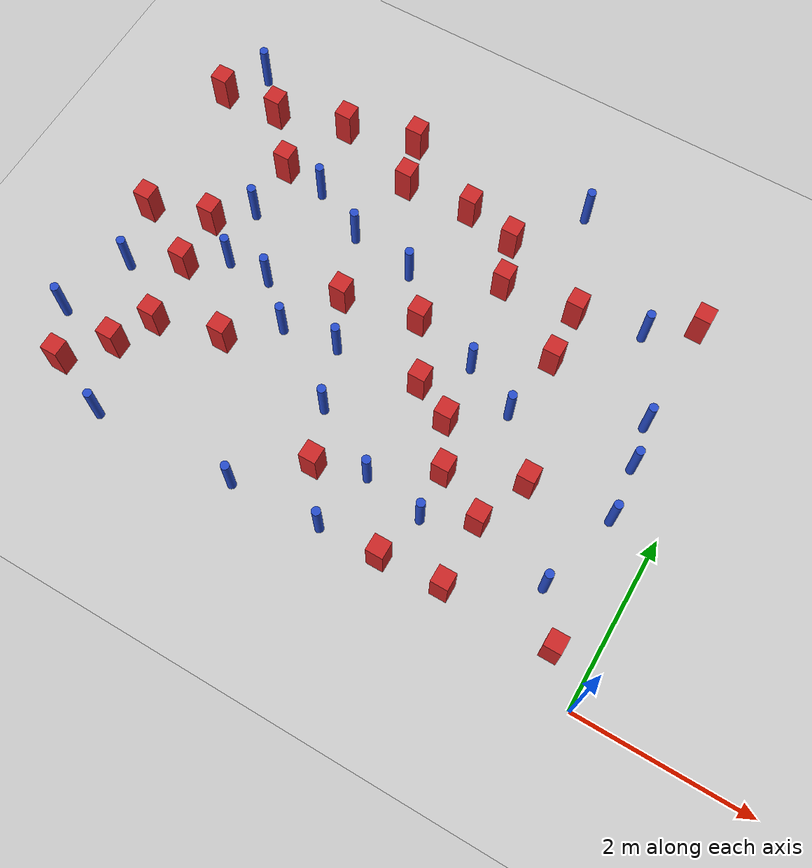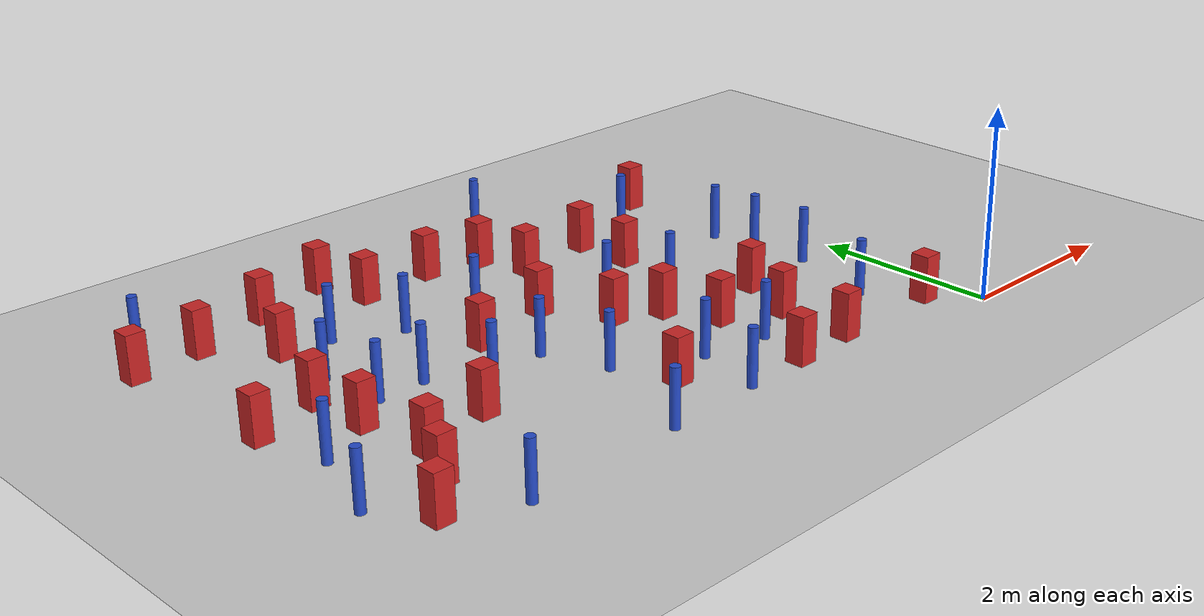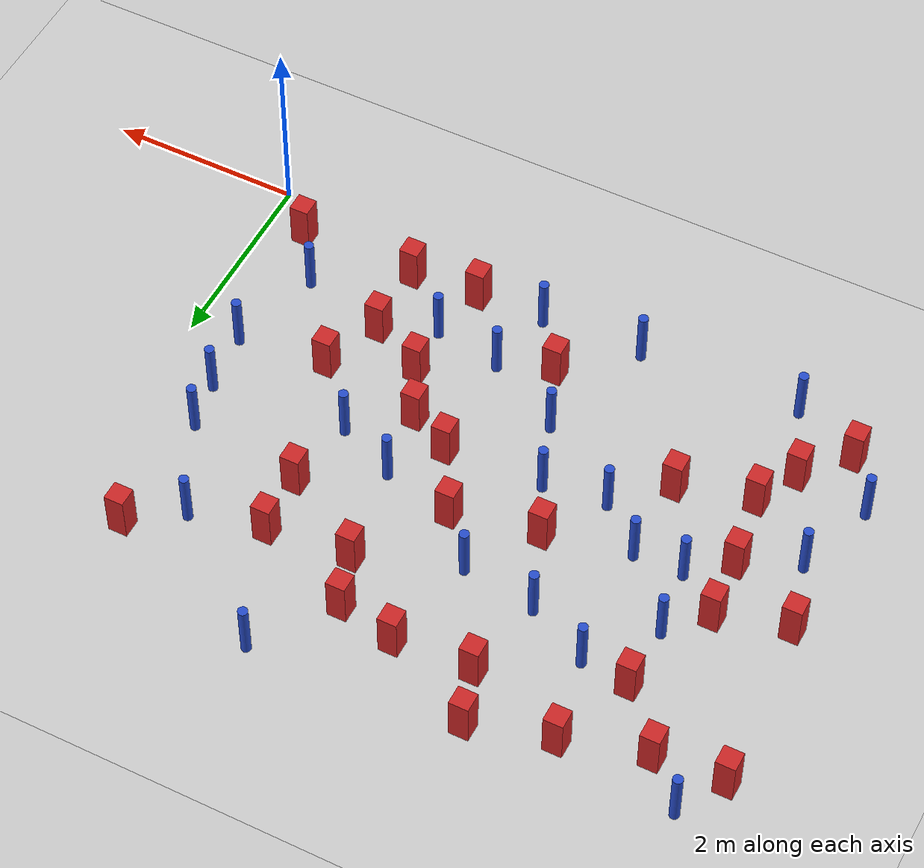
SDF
<sdf version="1.6">
 <world name="default">
  <model name="ground_plane">
   <static>1</static>
   <link name="link">
    <collision name="collision">
     <geometry><plane><normal>0 0 1</normal><size>100 100</size></plane></geometry>
     <surface><friction><ode><mu>100</mu><mu2>50</mu2></ode></friction></surface>
    </collision>
    <visual name="visual">
     <cast_shadows>0</cast_shadows>
     <geometry><plane><normal>0 0 1</normal><size>100 100</size></plane></geometry>
     <material>
      <ambient>1.0 1.0 1.0 1.0</ambient>
      <diffuse>0.8 0.8 0.8 1.0</diffuse>
      <specular>0.01 0.01 0.01 1.000000</specular>
     </material>
    </visual>
   </link>
  </model>
  <model name="square_post_obstacle1">
   <static>true</static>
   <pose>-6.06593483988 2.84606556767 -7.80171244635e-07 7.17449752808e-06 -5.6639232126e-07 2.2715510512e-05</pose>
   <link name="link">
    <pose>0 0 0.25 0 -0 0</pose>
    <inertial>
     <mass>100</mass>
     <inertia>
      <ixx>0.166667</ixx>
      <ixy>0</ixy>
      <ixz>0</ixz>
      <iyy>0.166667</iyy>
      <iyz>0</iyz>
      <izz>0.166667</izz>
     </inertia>
    </inertial>
    <collision name="collision"><geometry><box><size>.2 .2 .5</size></box></geometry></collision>
    <visual name="visual">
     <geometry><box><size>.2 .2 .5</size></box></geometry>
     <material>
      <script><name>Gazebo/Red</name><uri>file://media/materials/scripts/gazebo.material</uri></script>
     </material>
    </visual>
   </link>
  </model>
  <model name="pole_obstacle4">
   <static>true</static>
   <pose>-6.62271847149 4.88114165928 -2.66029137441e-07 -5.69430205655e-07 6.84129966534e-07 -8.68349370984e-08</pose>
   <link name="link">
    <pose>0 0 0.3 0 -0 0</pose>
    <inertial>
     <mass>1</mass>
     <inertia><ixx>0.145833</ixx><ixy>0</ixy><ixz>0</ixz><iyy>0.145833</iyy><iyz>0</iyz><izz>0.125</izz></inertia>
    </inertial>
    <collision name="collision">
     <geometry><cylinder><radius>0.05</radius><length>.6</length></cylinder></geometry>
    </collision>
    <visual name="visual">
     <geometry><cylinder><radius>0.05</radius><length>.6</length></cylinder></geometry>
     <material>
      <script><name>Gazebo/Blue</name><uri>file://media/materials/scripts/gazebo.material</uri></script>
     </material>
    </visual>
   </link>
  </model>
  <model name="pole_obstacle11">
   <static>true</static>
   <pose>-3.99268747711 2.19236313208 -2.66029137441e-07 -5.69430205653e-07 6.84129966536e-07 -8.68349370973e-08</pose>
   <link name="link">
    <pose>0 0 0.3 0 -0 0</pose>
    <inertial>
     <mass>1</mass>
     <inertia><ixx>0.145833</ixx><ixy>0</ixy><ixz>0</ixz><iyy>0.145833</iyy><iyz>0</iyz><izz>0.125</izz></inertia>
    </inertial>
    <collision name="collision">
     <geometry><cylinder><radius>0.05</radius><length>.6</length></cylinder></geometry>
    </collision>
    <visual name="visual">
     <geometry><cylinder><radius>0.05</radius><length>.6</length></cylinder></geometry>
     <material>
      <script><name>Gazebo/Blue</name><uri>file://media/materials/scripts/gazebo.material</uri></script>
     </material>
    </visual>
   </link>
  </model>
  <model name="square_post_obstacle8">
   <static>true</static>
   <pose>-1.87889073351 3.23329521501 -7.80171244635e-07 7.17449752808e-06 -5.6639232126e-07 2.2715510512e-05</pose>
   <link name="link">
    <pose>0 0 0.25 0 -0 0</pose>
    <inertial>
     <mass>100</mass>
     <inertia>
      <ixx>0.166667</ixx>
      <ixy>0</ixy>
      <ixz>0</ixz>
      <iyy>0.166667</iyy>
      <iyz>0</iyz>
      <izz>0.166667</izz>
     </inertia>
    </inertial>
    <collision name="collision"><geometry><box><size>.2 .2 .5</size></box></geometry></collision>
    <visual name="visual">
     <geometry><box><size>.2 .2 .5</size></box></geometry>
     <material>
      <script><name>Gazebo/Red</name><uri>file://media/materials/scripts/gazebo.material</uri></script>
     </material>
    </visual>
   </link>
  </model>
  <model name="square_post_obstacle9">
   <static>true</static>
   <pose>-2.26860949439 1.50420634749 -7.80171244635e-07 7.17449752808e-06 -5.6639232126e-07 2.2715510512e-05</pose>
   <link name="link">
    <pose>0 0 0.25 0 -0 0</pose>
    <inertial>
     <mass>100</mass>
     <inertia>
      <ixx>0.166667</ixx>
      <ixy>0</ixy>
      <ixz>0</ixz>
      <iyy>0.166667</iyy>
      <iyz>0</iyz>
      <izz>0.166667</izz>
     </inertia>
    </inertial>
    <collision name="collision"><geometry><box><size>.2 .2 .5</size></box></geometry></collision>
    <visual name="visual">
     <geometry><box><size>.2 .2 .5</size></box></geometry>
     <material>
      <script><name>Gazebo/Red</name><uri>file://media/materials/scripts/gazebo.material</uri></script>
     </material>
    </visual>
   </link>
  </model>
  <model name="square_post_obstacle15">
   <static>true</static>
   <pose>-1.92103498765 3.86688536144 -7.80171244635e-07 7.17449752808e-06 -5.6639232126e-07 2.2715510512e-05</pose>
   <link name="link">
    <pose>0 0 0.25 0 -0 0</pose>
    <inertial>
     <mass>100</mass>
     <inertia>
      <ixx>0.166667</ixx>
      <ixy>0</ixy>
      <ixz>0</ixz>
      <iyy>0.166667</iyy>
      <iyz>0</iyz>
      <izz>0.166667</izz>
     </inertia>
    </inertial>
    <collision name="collision"><geometry><box><size>.2 .2 .5</size></box></geometry></collision>
    <visual name="visual">
     <geometry><box><size>.2 .2 .5</size></box></geometry>
     <material>
      <script><name>Gazebo/Red</name><uri>file://media/materials/scripts/gazebo.material</uri></script>
     </material>
    </visual>
   </link>
  </model>
  <model name="square_post_obstacle16">
   <static>true</static>
   <pose>-6.01761942537 2.20735195207 -7.80171244635e-07 7.17449752808e-06 -5.6639232126e-07 2.2715510512e-05</pose>
   <link name="link">
    <pose>0 0 0.25 0 -0 0</pose>
    <inertial>
     <mass>100</mass>
     <inertia>
      <ixx>0.166667</ixx>
      <ixy>0</ixy>
      <ixz>0</ixz>
      <iyy>0.166667</iyy>
      <iyz>0</iyz>
      <izz>0.166667</izz>
     </inertia>
    </inertial>
    <collision name="collision"><geometry><box><size>.2 .2 .5</size></box></geometry></collision>
    <visual name="visual">
     <geometry><box><size>.2 .2 .5</size></box></geometry>
     <material>
      <script><name>Gazebo/Red</name><uri>file://media/materials/scripts/gazebo.material</uri></script>
     </material>
    </visual>
   </link>
  </model>
  <model name="square_post_obstacle21">
   <static>true</static>
   <pose>-2.53292568742 2.02529417124 -7.80171244635e-07 7.17449752808e-06 -5.6639232126e-07 2.2715510512e-05</pose>
   <link name="link">
    <pose>0 0 0.25 0 -0 0</pose>
    <inertial>
     <mass>100</mass>
     <inertia>
      <ixx>0.166667</ixx>
      <ixy>0</ixy>
      <ixz>0</ixz>
      <iyy>0.166667</iyy>
      <iyz>0</iyz>
      <izz>0.166667</izz>
     </inertia>
    </inertial>
    <collision name="collision"><geometry><box><size>.2 .2 .5</size></box></geometry></collision>
    <visual name="visual">
     <geometry><box><size>.2 .2 .5</size></box></geometry>
     <material>
      <script><name>Gazebo/Red</name><uri>file://media/materials/scripts/gazebo.material</uri></script>
     </material>
    </visual>
   </link>
  </model>
  <model name="pole_obstacle38">
   <static>true</static>
   <pose>-6.58672201873 1.91724689075 -2.66029137441e-07 -5.69430205627e-07 6.84129966567e-07 -8.68349370776e-08</pose>
   <link name="link">
    <pose>0 0 0.3 0 -0 0</pose>
    <inertial>
     <mass>1</mass>
     <inertia><ixx>0.145833</ixx><ixy>0</ixy><ixz>0</ixz><iyy>0.145833</iyy><iyz>0</iyz><izz>0.125</izz></inertia>
    </inertial>
    <collision name="collision">
     <geometry><cylinder><radius>0.05</radius><length>.6</length></cylinder></geometry>
    </collision>
    <visual name="visual">
     <geometry><cylinder><radius>0.05</radius><length>.6</length></cylinder></geometry>
     <material>
      <script><name>Gazebo/Blue</name><uri>file://media/materials/scripts/gazebo.material</uri></script>
     </material>
    </visual>
   </link>
  </model>
  <model name="pole_obstacle39">
   <static>true</static>
   <pose>-3.77330424287 3.39576795061 -2.66029137441e-07 -5.6943020563e-07 6.84129966563e-07 -8.68349370788e-08</pose>
   <link name="link">
    <pose>0 0 0.3 0 -0 0</pose>
    <inertial>
     <mass>1</mass>
     <inertia><ixx>0.145833</ixx><ixy>0</ixy><ixz>0</ixz><iyy>0.145833</iyy><iyz>0</iyz><izz>0.125</izz></inertia>
    </inertial>
    <collision name="collision">
     <geometry><cylinder><radius>0.05</radius><length>.6</length></cylinder></geometry>
    </collision>
    <visual name="visual">
     <geometry><cylinder><radius>0.05</radius><length>.6</length></cylinder></geometry>
     <material>
      <script><name>Gazebo/Blue</name><uri>file://media/materials/scripts/gazebo.material</uri></script>
     </material>
    </visual>
   </link>
  </model>
  <model name="pole_obstacle41">
   <static>true</static>
   <pose>-4.1441873771 0.296855048618 -2.66029137441e-07 -5.69430205636e-07 6.84129966556e-07 -8.68349370825e-08</pose>
   <link name="link">
    <pose>0 0 0.3 0 -0 0</pose>
    <inertial>
     <mass>1</mass>
     <inertia><ixx>0.145833</ixx><ixy>0</ixy><ixz>0</ixz><iyy>0.145833</iyy><iyz>0</iyz><izz>0.125</izz></inertia>
    </inertial>
    <collision name="collision">
     <geometry><cylinder><radius>0.05</radius><length>.6</length></cylinder></geometry>
    </collision>
    <visual name="visual">
     <geometry><cylinder><radius>0.05</radius><length>.6</length></cylinder></geometry>
     <material>
      <script><name>Gazebo/Blue</name><uri>file://media/materials/scripts/gazebo.material</uri></script>
     </material>
    </visual>
   </link>
  </model>
  <model name="square_post_obstacle31">
   <static>true</static>
   <pose>-1.45240076418 1.83651459743 -7.80171244635e-07 7.17449752808e-06 -5.6639232126e-07 2.2715510512e-05</pose>
   <link name="link">
    <pose>0 0 0.25 0 -0 0</pose>
    <inertial>
     <mass>100</mass>
     <inertia>
      <ixx>0.166667</ixx>
      <ixy>0</ixy>
      <ixz>0</ixz>
      <iyy>0.166667</iyy>
      <iyz>0</iyz>
      <izz>0.166667</izz>
     </inertia>
    </inertial>
    <collision name="collision"><geometry><box><size>.2 .2 .5</size></box></geometry></collision>
    <visual name="visual">
     <geometry><box><size>.2 .2 .5</size></box></geometry>
     <material>
      <script><name>Gazebo/Red</name><uri>file://media/materials/scripts/gazebo.material</uri></script>
     </material>
    </visual>
   </link>
  </model>
  <model name="square_post_obstacle34">
   <static>true</static>
   <pose>-5.12963393485 1.65253416771 -7.80171244635e-07 7.17449752808e-06 -5.6639232126e-07 2.2715510512e-05</pose>
   <link name="link">
    <pose>0 0 0.25 0 -0 0</pose>
    <inertial>
     <mass>100</mass>
     <inertia>
      <ixx>0.166667</ixx>
      <ixy>0</ixy>
      <ixz>0</ixz>
      <iyy>0.166667</iyy>
      <iyz>0</iyz>
      <izz>0.166667</izz>
     </inertia>
    </inertial>
    <collision name="collision"><geometry><box><size>.2 .2 .5</size></box></geometry></collision>
    <visual name="visual">
     <geometry><box><size>.2 .2 .5</size></box></geometry>
     <material>
      <script><name>Gazebo/Red</name><uri>file://media/materials/scripts/gazebo.material</uri></script>
     </material>
    </visual>
   </link>
  </model>
  <model name="square_post_obstacle44">
   <static>true</static>
   <pose>-0.654440893285 4.39791983803 -7.80171244635e-07 7.17449752808e-06 -5.6639232126e-07 2.2715510512e-05</pose>
   <link name="link">
    <pose>0 0 0.25 0 -0 0</pose>
    <inertial>
     <mass>100</mass>
     <inertia>
      <ixx>0.166667</ixx>
      <ixy>0</ixy>
      <ixz>0</ixz>
      <iyy>0.166667</iyy>
      <iyz>0</iyz>
      <izz>0.166667</izz>
     </inertia>
    </inertial>
    <collision name="collision"><geometry><box><size>.2 .2 .5</size></box></geometry></collision>
    <visual name="visual">
     <geometry><box><size>.2 .2 .5</size></box></geometry>
     <material>
      <script><name>Gazebo/Red</name><uri>file://media/materials/scripts/gazebo.material</uri></script>
     </material>
    </visual>
   </link>
  </model>
  <model name="square_post_obstacle46">
   <static>true</static>
   <pose>-5.70289400672 3.88062406893 -7.80171244635e-07 7.17449752808e-06 -5.6639232126e-07 2.2715510512e-05</pose>
   <link name="link">
    <pose>0 0 0.25 0 -0 0</pose>
    <inertial>
     <mass>100</mass>
     <inertia>
      <ixx>0.166667</ixx>
      <ixy>0</ixy>
      <ixz>0</ixz>
      <iyy>0.166667</iyy>
      <iyz>0</iyz>
      <izz>0.166667</izz>
     </inertia>
    </inertial>
    <collision name="collision"><geometry><box><size>.2 .2 .5</size></box></geometry></collision>
    <visual name="visual">
     <geometry><box><size>.2 .2 .5</size></box></geometry>
     <material>
      <script><name>Gazebo/Red</name><uri>file://media/materials/scripts/gazebo.material</uri></script>
     </material>
    </visual>
   </link>
  </model>
  <model name="pole_obstacle65">
   <static>true</static>
   <pose>-2.38574666746 5.07814431807 -2.66029137441e-07 -5.69430205635e-07 6.84129966557e-07 -8.68349370832e-08</pose>
   <link name="link">
    <pose>0 0 0.3 0 -0 0</pose>
    <inertial>
     <mass>1</mass>
     <inertia><ixx>0.145833</ixx><ixy>0</ixy><ixz>0</ixz><iyy>0.145833</iyy><iyz>0</iyz><izz>0.125</izz></inertia>
    </inertial>
    <collision name="collision">
     <geometry><cylinder><radius>0.05</radius><length>.6</length></cylinder></geometry>
    </collision>
    <visual name="visual">
     <geometry><cylinder><radius>0.05</radius><length>.6</length></cylinder></geometry>
     <material>
      <script><name>Gazebo/Blue</name><uri>file://media/materials/scripts/gazebo.material</uri></script>
     </material>
    </visual>
   </link>
  </model>
  <model name="pole_obstacle71">
   <static>true</static>
   <pose>-3.09207731526 0.352494883554 -2.66029137441e-07 -5.69430205624e-07 6.8412996657e-07 -8.6834937075e-08</pose>
   <link name="link">
    <pose>0 0 0.3 0 -0 0</pose>
    <inertial>
     <mass>1</mass>
     <inertia><ixx>0.145833</ixx><ixy>0</ixy><ixz>0</ixz><iyy>0.145833</iyy><iyz>0</iyz><izz>0.125</izz></inertia>
    </inertial>
    <collision name="collision">
     <geometry><cylinder><radius>0.05</radius><length>.6</length></cylinder></geometry>
    </collision>
    <visual name="visual">
     <geometry><cylinder><radius>0.05</radius><length>.6</length></cylinder></geometry>
     <material>
      <script><name>Gazebo/Blue</name><uri>file://media/materials/scripts/gazebo.material</uri></script>
     </material>
    </visual>
   </link>
  </model>
  <model name="pole_obstacle80">
   <static>true</static>
   <pose>-0.578013936541 2.56626513027 -2.66029137441e-07 -5.69430205631e-07 6.84129966562e-07 -8.68349370796e-08</pose>
   <link name="link">
    <pose>0 0 0.3 0 -0 0</pose>
    <inertial>
     <mass>1</mass>
     <inertia><ixx>0.145833</ixx><ixy>0</ixy><ixz>0</ixz><iyy>0.145833</iyy><iyz>0</iyz><izz>0.125</izz></inertia>
    </inertial>
    <collision name="collision">
     <geometry><cylinder><radius>0.05</radius><length>.6</length></cylinder></geometry>
    </collision>
    <visual name="visual">
     <geometry><cylinder><radius>0.05</radius><length>.6</length></cylinder></geometry>
     <material>
      <script><name>Gazebo/Blue</name><uri>file://media/materials/scripts/gazebo.material</uri></script>
     </material>
    </visual>
   </link>
  </model>
  <model name="pole_obstacle82">
   <static>true</static>
   <pose>-5.19753260124 3.82438765415 -2.66029137441e-07 -5.69430205643e-07 6.84129966548e-07 -8.68349370881e-08</pose>
   <link name="link">
    <pose>0 0 0.3 0 -0 0</pose>
    <inertial>
     <mass>1</mass>
     <inertia><ixx>0.145833</ixx><ixy>0</ixy><ixz>0</ixz><iyy>0.145833</iyy><iyz>0</iyz><izz>0.125</izz></inertia>
    </inertial>
    <collision name="collision">
     <geometry><cylinder><radius>0.05</radius><length>.6</length></cylinder></geometry>
    </collision>
    <visual name="visual">
     <geometry><cylinder><radius>0.05</radius><length>.6</length></cylinder></geometry>
     <material>
      <script><name>Gazebo/Blue</name><uri>file://media/materials/scripts/gazebo.material</uri></script>
     </material>
    </visual>
   </link>
  </model>
  <model name="square_post_obstacle72">
   <static>true</static>
   <pose>-3.49173247439 0.896241034373 -7.80171244635e-07 7.17449752808e-06 -5.6639232126e-07 2.2715510512e-05</pose>
   <link name="link">
    <pose>0 0 0.25 0 -0 0</pose>
    <inertial>
     <mass>100</mass>
     <inertia>
      <ixx>0.166667</ixx>
      <ixy>0</ixy>
      <ixz>0</ixz>
      <iyy>0.166667</iyy>
      <iyz>0</iyz>
      <izz>0.166667</izz>
     </inertia>
    </inertial>
    <collision name="collision"><geometry><box><size>.2 .2 .5</size></box></geometry></collision>
    <visual name="visual">
     <geometry><box><size>.2 .2 .5</size></box></geometry>
     <material>
      <script><name>Gazebo/Red</name><uri>file://media/materials/scripts/gazebo.material</uri></script>
     </material>
    </visual>
   </link>
  </model>
  <model name="pole_obstacle83">
   <static>true</static>
   <pose>-0.786725092776 0.959872520723 -2.66029137441e-07 -5.69430205642e-07 6.84129966549e-07 -8.68349370893e-08</pose>
   <link name="link">
    <pose>0 0 0.3 0 -0 0</pose>
    <inertial>
     <mass>1</mass>
     <inertia><ixx>0.145833</ixx><ixy>0</ixy><ixz>0</ixz><iyy>0.145833</iyy><iyz>0</iyz><izz>0.125</izz></inertia>
    </inertial>
    <collision name="collision">
     <geometry><cylinder><radius>0.05</radius><length>.6</length></cylinder></geometry>
    </collision>
    <visual name="visual">
     <geometry><cylinder><radius>0.05</radius><length>.6</length></cylinder></geometry>
     <material>
      <script><name>Gazebo/Blue</name><uri>file://media/materials/scripts/gazebo.material</uri></script>
     </material>
    </visual>
   </link>
  </model>
  <model name="square_post_obstacle79">
   <static>true</static>
   <pose>-4.3748003786 4.38505757336 -7.80171244635e-07 7.17449752808e-06 -5.6639232126e-07 2.2715510512e-05</pose>
   <link name="link">
    <pose>0 0 0.25 0 -0 0</pose>
    <inertial>
     <mass>100</mass>
     <inertia>
      <ixx>0.166667</ixx>
      <ixy>0</ixy>
      <ixz>0</ixz>
      <iyy>0.166667</iyy>
      <iyz>0</iyz>
      <izz>0.166667</izz>
     </inertia>
    </inertial>
    <collision name="collision"><geometry><box><size>.2 .2 .5</size></box></geometry></collision>
    <visual name="visual">
     <geometry><box><size>.2 .2 .5</size></box></geometry>
     <material>
      <script><name>Gazebo/Red</name><uri>file://media/materials/scripts/gazebo.material</uri></script>
     </material>
    </visual>
   </link>
  </model>
  <model name="pole_obstacle93">
   <static>true</static>
   <pose>-5.61876787686 2.51191317717 -2.66029137441e-07 -5.69430205643e-07 6.84129966548e-07 -8.68349370881e-08</pose>
   <link name="link">
    <pose>0 0 0.3 0 -0 0</pose>
    <inertial>
     <mass>1</mass>
     <inertia><ixx>0.145833</ixx><ixy>0</ixy><ixz>0</ixz><iyy>0.145833</iyy><iyz>0</iyz><izz>0.125</izz></inertia>
    </inertial>
    <collision name="collision">
     <geometry><cylinder><radius>0.05</radius><length>.6</length></cylinder></geometry>
    </collision>
    <visual name="visual">
     <geometry><cylinder><radius>0.05</radius><length>.6</length></cylinder></geometry>
     <material>
      <script><name>Gazebo/Blue</name><uri>file://media/materials/scripts/gazebo.material</uri></script>
     </material>
    </visual>
   </link>
  </model>
  <model name="square_post_obstacle88">
   <static>true</static>
   <pose>-1.69788798102 1.20980502016 -7.80171244635e-07 7.17449752808e-06 -5.6639232126e-07 2.2715510512e-05</pose>
   <link name="link">
    <pose>0 0 0.25 0 -0 0</pose>
    <inertial>
     <mass>100</mass>
     <inertia>
      <ixx>0.166667</ixx>
      <ixy>0</ixy>
      <ixz>0</ixz>
      <iyy>0.166667</iyy>
      <iyz>0</iyz>
      <izz>0.166667</izz>
     </inertia>
    </inertial>
    <collision name="collision"><geometry><box><size>.2 .2 .5</size></box></geometry></collision>
    <visual name="visual">
     <geometry><box><size>.2 .2 .5</size></box></geometry>
     <material>
      <script><name>Gazebo/Red</name><uri>file://media/materials/scripts/gazebo.material</uri></script>
     </material>
    </visual>
   </link>
  </model>
  <model name="pole_obstacle96">
   <static>true</static>
   <pose>-3.74498771844 1.51374592046 -2.66029137441e-07 -5.69430205626e-07 6.84129966567e-07 -8.68349370747e-08</pose>
   <link name="link">
    <pose>0 0 0.3 0 -0 0</pose>
    <inertial>
     <mass>1</mass>
     <inertia><ixx>0.145833</ixx><ixy>0</ixy><ixz>0</ixz><iyy>0.145833</iyy><iyz>0</iyz><izz>0.125</izz></inertia>
    </inertial>
    <collision name="collision">
     <geometry><cylinder><radius>0.05</radius><length>.6</length></cylinder></geometry>
    </collision>
    <visual name="visual">
     <geometry><cylinder><radius>0.05</radius><length>.6</length></cylinder></geometry>
     <material>
      <script><name>Gazebo/Blue</name><uri>file://media/materials/scripts/gazebo.material</uri></script>
     </material>
    </visual>
   </link>
  </model>
  <model name="square_post_obstacle91">
   <static>true</static>
   <pose>-6.12307682161 0.999225847637 -7.80171244635e-07 7.17449752808e-06 -5.6639232126e-07 2.2715510512e-05</pose>
   <link name="link">
    <pose>0 0 0.25 0 -0 0</pose>
    <inertial>
     <mass>100</mass>
     <inertia>
      <ixx>0.166667</ixx>
      <ixy>0</ixy>
      <ixz>0</ixz>
      <iyy>0.166667</iyy>
      <iyz>0</iyz>
      <izz>0.166667</izz>
     </inertia>
    </inertial>
    <collision name="collision"><geometry><box><size>.2 .2 .5</size></box></geometry></collision>
    <visual name="visual">
     <geometry><box><size>.2 .2 .5</size></box></geometry>
     <material>
      <script><name>Gazebo/Red</name><uri>file://media/materials/scripts/gazebo.material</uri></script>
     </material>
    </visual>
   </link>
  </model>
  <model name="square_post_obstacle96">
   <static>true</static>
   <pose>-5.38040604646 4.71300636892 -7.80171244635e-07 7.17449752808e-06 -5.6639232126e-07 2.2715510512e-05</pose>
   <link name="link">
    <pose>0 0 0.25 0 -0 0</pose>
    <inertial>
     <mass>100</mass>
     <inertia>
      <ixx>0.166667</ixx>
      <ixy>0</ixy>
      <ixz>0</ixz>
      <iyy>0.166667</iyy>
      <iyz>0</iyz>
      <izz>0.166667</izz>
     </inertia>
    </inertial>
    <collision name="collision"><geometry><box><size>.2 .2 .5</size></box></geometry></collision>
    <visual name="visual">
     <geometry><box><size>.2 .2 .5</size></box></geometry>
     <material>
      <script><name>Gazebo/Red</name><uri>file://media/materials/scripts/gazebo.material</uri></script>
     </material>
    </visual>
   </link>
  </model>
  <model name="pole_obstacle102">
   <static>true</static>
   <pose>-1.15261656599 4.03274814167 -2.66029137441e-07 -5.69430205636e-07 6.84129966556e-07 -8.68349370838e-08</pose>
   <link name="link">
    <pose>0 0 0.3 0 -0 0</pose>
    <inertial>
     <mass>1</mass>
     <inertia><ixx>0.145833</ixx><ixy>0</ixy><ixz>0</ixz><iyy>0.145833</iyy><iyz>0</iyz><izz>0.125</izz></inertia>
    </inertial>
    <collision name="collision">
     <geometry><cylinder><radius>0.05</radius><length>.6</length></cylinder></geometry>
    </collision>
    <visual name="visual">
     <geometry><cylinder><radius>0.05</radius><length>.6</length></cylinder></geometry>
     <material>
      <script><name>Gazebo/Blue</name><uri>file://media/materials/scripts/gazebo.material</uri></script>
     </material>
    </visual>
   </link>
  </model>
  <model name="pole_obstacle104">
   <static>true</static>
   <pose>-0.667177622662 3.06403730986 -2.66029137441e-07 -5.69430205631e-07 6.84129966562e-07 -8.68349370796e-08</pose>
   <link name="link">
    <pose>0 0 0.3 0 -0 0</pose>
    <inertial>
     <mass>1</mass>
     <inertia><ixx>0.145833</ixx><ixy>0</ixy><ixz>0</ixz><iyy>0.145833</iyy><iyz>0</iyz><izz>0.125</izz></inertia>
    </inertial>
    <collision name="collision">
     <geometry><cylinder><radius>0.05</radius><length>.6</length></cylinder></geometry>
    </collision>
    <visual name="visual">
     <geometry><cylinder><radius>0.05</radius><length>.6</length></cylinder></geometry>
     <material>
      <script><name>Gazebo/Blue</name><uri>file://media/materials/scripts/gazebo.material</uri></script>
     </material>
    </visual>
   </link>
  </model>
  <model name="pole_obstacle110">
   <static>true</static>
   <pose>-1.99146956132 2.45581176138 -2.66029137441e-07 -5.69430205622e-07 6.84129966572e-07 -8.68349370722e-08</pose>
   <link name="link">
    <pose>0 0 0.3 0 -0 0</pose>
    <inertial>
     <mass>1</mass>
     <inertia><ixx>0.145833</ixx><ixy>0</ixy><ixz>0</ixz><iyy>0.145833</iyy><iyz>0</iyz><izz>0.125</izz></inertia>
    </inertial>
    <collision name="collision">
     <geometry><cylinder><radius>0.05</radius><length>.6</length></cylinder></geometry>
    </collision>
    <visual name="visual">
     <geometry><cylinder><radius>0.05</radius><length>.6</length></cylinder></geometry>
     <material>
      <script><name>Gazebo/Blue</name><uri>file://media/materials/scripts/gazebo.material</uri></script>
     </material>
    </visual>
   </link>
  </model>
  <model name="square_post_obstacle106">
   <static>true</static>
   <pose>-6.78234160801 2.63760146215 -7.80171244635e-07 7.17449752808e-06 -5.6639232126e-07 2.2715510512e-05</pose>
   <link name="link">
    <pose>0 0 0.25 0 -0 0</pose>
    <inertial>
     <mass>100</mass>
     <inertia>
      <ixx>0.166667</ixx>
      <ixy>0</ixy>
      <ixz>0</ixz>
      <iyy>0.166667</iyy>
      <iyz>0</iyz>
      <izz>0.166667</izz>
     </inertia>
    </inertial>
    <collision name="collision"><geometry><box><size>.2 .2 .5</size></box></geometry></collision>
    <visual name="visual">
     <geometry><box><size>.2 .2 .5</size></box></geometry>
     <material>
      <script><name>Gazebo/Red</name><uri>file://media/materials/scripts/gazebo.material</uri></script>
     </material>
    </visual>
   </link>
  </model>
  <model name="square_post_obstacle116">
   <static>true</static>
   <pose>-3.56763164616 4.43809526182 -7.80171244635e-07 7.17449752808e-06 -5.6639232126e-07 2.2715510512e-05</pose>
   <link name="link">
    <pose>0 0 0.25 0 -0 0</pose>
    <inertial>
     <mass>100</mass>
     <inertia>
      <ixx>0.166667</ixx>
      <ixy>0</ixy>
      <ixz>0</ixz>
      <iyy>0.166667</iyy>
      <iyz>0</iyz>
      <izz>0.166667</izz>
     </inertia>
    </inertial>
    <collision name="collision"><geometry><box><size>.2 .2 .5</size></box></geometry></collision>
    <visual name="visual">
     <geometry><box><size>.2 .2 .5</size></box></geometry>
     <material>
      <script><name>Gazebo/Red</name><uri>file://media/materials/scripts/gazebo.material</uri></script>
     </material>
    </visual>
   </link>
  </model>
  <model name="square_post_obstacle123">
   <static>true</static>
   <pose>-4.25275842145 2.73351185836 -7.80171244635e-07 7.17449752808e-06 -5.6639232126e-07 2.2715510512e-05</pose>
   <link name="link">
    <pose>0 0 0.25 0 -0 0</pose>
    <inertial>
     <mass>100</mass>
     <inertia>
      <ixx>0.166667</ixx>
      <ixy>0</ixy>
      <ixz>0</ixz>
      <iyy>0.166667</iyy>
      <iyz>0</iyz>
      <izz>0.166667</izz>
     </inertia>
    </inertial>
    <collision name="collision"><geometry><box><size>.2 .2 .5</size></box></geometry></collision>
    <visual name="visual">
     <geometry><box><size>.2 .2 .5</size></box></geometry>
     <material>
      <script><name>Gazebo/Red</name><uri>file://media/materials/scripts/gazebo.material</uri></script>
     </material>
    </visual>
   </link>
  </model>
  <model name="pole_obstacle132">
   <static>true</static>
   <pose>-5.1095621675 2.52239284081 -2.66029137441e-07 -5.69430205643e-07 6.84129966548e-07 -8.68349370881e-08</pose>
   <link name="link">
    <pose>0 0 0.3 0 -0 0</pose>
    <inertial>
     <mass>1</mass>
     <inertia><ixx>0.145833</ixx><ixy>0</ixy><ixz>0</ixz><iyy>0.145833</iyy><iyz>0</iyz><izz>0.125</izz></inertia>
    </inertial>
    <collision name="collision">
     <geometry><cylinder><radius>0.05</radius><length>.6</length></cylinder></geometry>
    </collision>
    <visual name="visual">
     <geometry><cylinder><radius>0.05</radius><length>.6</length></cylinder></geometry>
     <material>
      <script><name>Gazebo/Blue</name><uri>file://media/materials/scripts/gazebo.material</uri></script>
     </material>
    </visual>
   </link>
  </model>
  <model name="pole_obstacle144">
   <static>true</static>
   <pose>-6.86596001104 1.08111261181 -2.66029137441e-07 -5.69430205627e-07 6.84129966567e-07 -8.68349370776e-08</pose>
   <link name="link">
    <pose>0 0 0.3 0 -0 0</pose>
    <inertial>
     <mass>1</mass>
     <inertia><ixx>0.145833</ixx><ixy>0</ixy><ixz>0</ixz><iyy>0.145833</iyy><iyz>0</iyz><izz>0.125</izz></inertia>
    </inertial>
    <collision name="collision">
     <geometry><cylinder><radius>0.05</radius><length>.6</length></cylinder></geometry>
    </collision>
    <visual name="visual">
     <geometry><cylinder><radius>0.05</radius><length>.6</length></cylinder></geometry>
     <material>
      <script><name>Gazebo/Blue</name><uri>file://media/materials/scripts/gazebo.material</uri></script>
     </material>
    </visual>
   </link>
  </model>
  <model name="square_post_obstacle143">
   <static>true</static>
   <pose>-2.96200586943 4.30758642896 -7.80171244635e-07 7.17449752808e-06 -5.6639232126e-07 2.2715510512e-05</pose>
   <link name="link">
    <pose>0 0 0.25 0 -0 0</pose>
    <inertial>
     <mass>100</mass>
     <inertia>
      <ixx>0.166667</ixx>
      <ixy>0</ixy>
      <ixz>0</ixz>
      <iyy>0.166667</iyy>
      <iyz>0</iyz>
      <izz>0.166667</izz>
     </inertia>
    </inertial>
    <collision name="collision"><geometry><box><size>.2 .2 .5</size></box></geometry></collision>
    <visual name="visual">
     <geometry><box><size>.2 .2 .5</size></box></geometry>
     <material>
      <script><name>Gazebo/Red</name><uri>file://media/materials/scripts/gazebo.material</uri></script>
     </material>
    </visual>
   </link>
  </model>
  <model name="pole_obstacle154">
   <static>true</static>
   <pose>-2.61043390508 2.73764719462 -2.66029137441e-07 -5.69430205643e-07 6.84129966548e-07 -8.68349370903e-08</pose>
   <link name="link">
    <pose>0 0 0.3 0 -0 0</pose>
    <inertial>
     <mass>1</mass>
     <inertia><ixx>0.145833</ixx><ixy>0</ixy><ixz>0</ixz><iyy>0.145833</iyy><iyz>0</iyz><izz>0.125</izz></inertia>
    </inertial>
    <collision name="collision">
     <geometry><cylinder><radius>0.05</radius><length>.6</length></cylinder></geometry>
    </collision>
    <visual name="visual">
     <geometry><cylinder><radius>0.05</radius><length>.6</length></cylinder></geometry>
     <material>
      <script><name>Gazebo/Blue</name><uri>file://media/materials/scripts/gazebo.material</uri></script>
     </material>
    </visual>
   </link>
  </model>
  <model name="square_post_obstacle151">
   <static>true</static>
   <pose>-0.423326620229 0.432950523328 -7.80171244635e-07 7.17449752808e-06 -5.6639232126e-07 2.2715510512e-05</pose>
   <link name="link">
    <pose>0 0 0.25 0 -0 0</pose>
    <inertial>
     <mass>100</mass>
     <inertia>
      <ixx>0.166667</ixx>
      <ixy>0</ixy>
      <ixz>0</ixz>
      <iyy>0.166667</iyy>
      <iyz>0</iyz>
      <izz>0.166667</izz>
     </inertia>
    </inertial>
    <collision name="collision"><geometry><box><size>.2 .2 .5</size></box></geometry></collision>
    <visual name="visual">
     <geometry><box><size>.2 .2 .5</size></box></geometry>
     <material>
      <script><name>Gazebo/Red</name><uri>file://media/materials/scripts/gazebo.material</uri></script>
     </material>
    </visual>
   </link>
  </model>
  <model name="pole_obstacle156">
   <static>true</static>
   <pose>-5.71096962367 3.20157191759 -2.66029137441e-07 -5.69430205643e-07 6.84129966548e-07 -8.68349370881e-08</pose>
   <link name="link">
    <pose>0 0 0.3 0 -0 0</pose>
    <inertial>
     <mass>1</mass>
     <inertia><ixx>0.145833</ixx><ixy>0</ixy><ixz>0</ixz><iyy>0.145833</iyy><iyz>0</iyz><izz>0.125</izz></inertia>
    </inertial>
    <collision name="collision">
     <geometry><cylinder><radius>0.05</radius><length>.6</length></cylinder></geometry>
    </collision>
    <visual name="visual">
     <geometry><cylinder><radius>0.05</radius><length>.6</length></cylinder></geometry>
     <material>
      <script><name>Gazebo/Blue</name><uri>file://media/materials/scripts/gazebo.material</uri></script>
     </material>
    </visual>
   </link>
  </model>
  <model name="pole_obstacle158">
   <static>true</static>
   <pose>-2.94018155884 1.07516118985 -2.66029137441e-07 -5.69430205626e-07 6.84129966567e-07 -8.68349370747e-08</pose>
   <link name="link">
    <pose>0 0 0.3 0 -0 0</pose>
    <inertial>
     <mass>1</mass>
     <inertia><ixx>0.145833</ixx><ixy>0</ixy><ixz>0</ixz><iyy>0.145833</iyy><iyz>0</iyz><izz>0.125</izz></inertia>
    </inertial>
    <collision name="collision">
     <geometry><cylinder><radius>0.05</radius><length>.6</length></cylinder></geometry>
    </collision>
    <visual name="visual">
     <geometry><cylinder><radius>0.05</radius><length>.6</length></cylinder></geometry>
     <material>
      <script><name>Gazebo/Blue</name><uri>file://media/materials/scripts/gazebo.material</uri></script>
     </material>
    </visual>
   </link>
  </model>
  <model name="square_post_obstacle160">
   <static>true</static>
   <pose>-2.98096328681 2.25656432516 -7.80171244635e-07 7.17449752808e-06 -5.6639232126e-07 2.2715510512e-05</pose>
   <link name="link">
    <pose>0 0 0.25 0 -0 0</pose>
    <inertial>
     <mass>100</mass>
     <inertia>
      <ixx>0.166667</ixx>
      <ixy>0</ixy>
      <ixz>0</ixz>
      <iyy>0.166667</iyy>
      <iyz>0</iyz>
      <izz>0.166667</izz>
     </inertia>
    </inertial>
    <collision name="collision"><geometry><box><size>.2 .2 .5</size></box></geometry></collision>
    <visual name="visual">
     <geometry><box><size>.2 .2 .5</size></box></geometry>
     <material>
      <script><name>Gazebo/Red</name><uri>file://media/materials/scripts/gazebo.material</uri></script>
     </material>
    </visual>
   </link>
  </model>
  <model name="square_post_obstacle165">
   <static>true</static>
   <pose>-6.51609742554 0.546397639599 -7.80171244635e-07 7.17449752808e-06 -5.6639232126e-07 2.2715510512e-05</pose>
   <link name="link">
    <pose>0 0 0.25 0 -0 0</pose>
    <inertial>
     <mass>100</mass>
     <inertia>
      <ixx>0.166667</ixx>
      <ixy>0</ixy>
      <ixz>0</ixz>
      <iyy>0.166667</iyy>
      <iyz>0</iyz>
      <izz>0.166667</izz>
     </inertia>
    </inertial>
    <collision name="collision"><geometry><box><size>.2 .2 .5</size></box></geometry></collision>
    <visual name="visual">
     <geometry><box><size>.2 .2 .5</size></box></geometry>
     <material>
      <script><name>Gazebo/Red</name><uri>file://media/materials/scripts/gazebo.material</uri></script>
     </material>
    </visual>
   </link>
  </model>
  <model name="square_post_obstacle167">
   <static>true</static>
   <pose>-2.77712004155 3.78091347728 -7.80171244635e-07 7.17449752808e-06 -5.6639232126e-07 2.2715510512e-05</pose>
   <link name="link">
    <pose>0 0 0.25 0 -0 0</pose>
    <inertial>
     <mass>100</mass>
     <inertia>
      <ixx>0.166667</ixx>
      <ixy>0</ixy>
      <ixz>0</ixz>
      <iyy>0.166667</iyy>
      <iyz>0</iyz>
      <izz>0.166667</izz>
     </inertia>
    </inertial>
    <collision name="collision"><geometry><box><size>.2 .2 .5</size></box></geometry></collision>
    <visual name="visual">
     <geometry><box><size>.2 .2 .5</size></box></geometry>
     <material>
      <script><name>Gazebo/Red</name><uri>file://media/materials/scripts/gazebo.material</uri></script>
     </material>
    </visual>
   </link>
  </model>
  <model name="square_post_obstacle173">
   <static>true</static>
   <pose>-1.67170646237 0.430645721585 -7.80171244635e-07 7.17449752808e-06 -5.6639232126e-07 2.2715510512e-05</pose>
   <link name="link">
    <pose>0 0 0.25 0 -0 0</pose>
    <inertial>
     <mass>100</mass>
     <inertia>
      <ixx>0.166667</ixx>
      <ixy>0</ixy>
      <ixz>0</ixz>
      <iyy>0.166667</iyy>
      <iyz>0</iyz>
      <izz>0.166667</izz>
     </inertia>
    </inertial>
    <collision name="collision"><geometry><box><size>.2 .2 .5</size></box></geometry></collision>
    <visual name="visual">
     <geometry><box><size>.2 .2 .5</size></box></geometry>
     <material>
      <script><name>Gazebo/Red</name><uri>file://media/materials/scripts/gazebo.material</uri></script>
     </material>
    </visual>
   </link>
  </model>
  <model name="square_post_obstacle174">
   <static>true</static>
   <pose>-6.21201884535 4.47246412216 -7.80171244635e-07 7.17449752808e-06 -5.6639232126e-07 2.2715510512e-05</pose>
   <link name="link">
    <pose>0 0 0.25 0 -0 0</pose>
    <inertial>
     <mass>100</mass>
     <inertia>
      <ixx>0.166667</ixx>
      <ixy>0</ixy>
      <ixz>0</ixz>
      <iyy>0.166667</iyy>
      <iyz>0</iyz>
      <izz>0.166667</izz>
     </inertia>
    </inertial>
    <collision name="collision"><geometry><box><size>.2 .2 .5</size></box></geometry></collision>
    <visual name="visual">
     <geometry><box><size>.2 .2 .5</size></box></geometry>
     <material>
      <script><name>Gazebo/Red</name><uri>file://media/materials/scripts/gazebo.material</uri></script>
     </material>
    </visual>
   </link>
  </model>
  <model name="pole_obstacle178">
   <static>true</static>
   <pose>-5.8185603935 0.245353044911 -2.66029137441e-07 -5.69430205627e-07 6.84129966567e-07 -8.68349370772e-08</pose>
   <link name="link">
    <pose>0 0 0.3 0 -0 0</pose>
    <inertial>
     <mass>1</mass>
     <inertia><ixx>0.145833</ixx><ixy>0</ixy><ixz>0</ixz><iyy>0.145833</iyy><iyz>0</iyz><izz>0.125</izz></inertia>
    </inertial>
    <collision name="collision">
     <geometry><cylinder><radius>0.05</radius><length>.6</length></cylinder></geometry>
    </collision>
    <visual name="visual">
     <geometry><cylinder><radius>0.05</radius><length>.6</length></cylinder></geometry>
     <material>
      <script><name>Gazebo/Blue</name><uri>file://media/materials/scripts/gazebo.material</uri></script>
     </material>
    </visual>
   </link>
  </model>
  <model name="square_post_obstacle178">
   <static>true</static>
   <pose>-2.38539424414 0.382376347379 -7.80171244635e-07 7.17449752808e-06 -5.6639232126e-07 2.2715510512e-05</pose>
   <link name="link">
    <pose>0 0 0.25 0 -0 0</pose>
    <inertial>
     <mass>100</mass>
     <inertia>
      <ixx>0.166667</ixx>
      <ixy>0</ixy>
      <ixz>0</ixz>
      <iyy>0.166667</iyy>
      <iyz>0</iyz>
      <izz>0.166667</izz>
     </inertia>
    </inertial>
    <collision name="collision"><geometry><box><size>.2 .2 .5</size></box></geometry></collision>
    <visual name="visual">
     <geometry><box><size>.2 .2 .5</size></box></geometry>
     <material>
      <script><name>Gazebo/Red</name><uri>file://media/materials/scripts/gazebo.material</uri></script>
     </material>
    </visual>
   </link>
  </model>
  <model name="pole_obstacle181">
   <static>true</static>
   <pose>-4.54965726667 3.51241129785 -2.66029137441e-07 -5.69430205643e-07 6.84129966548e-07 -8.68349370881e-08</pose>
   <link name="link">
    <pose>0 0 0.3 0 -0 0</pose>
    <inertial>
     <mass>1</mass>
     <inertia><ixx>0.145833</ixx><ixy>0</ixy><ixz>0</ixz><iyy>0.145833</iyy><iyz>0</iyz><izz>0.125</izz></inertia>
    </inertial>
    <collision name="collision">
     <geometry><cylinder><radius>0.05</radius><length>.6</length></cylinder></geometry>
    </collision>
    <visual name="visual">
     <geometry><cylinder><radius>0.05</radius><length>.6</length></cylinder></geometry>
     <material>
      <script><name>Gazebo/Blue</name><uri>file://media/materials/scripts/gazebo.material</uri></script>
     </material>
    </visual>
   </link>
  </model>
  <model name="square_post_obstacle183">
   <static>true</static>
   <pose>-5.89776182605 1.45068031062 -7.80171244635e-07 7.17449752808e-06 -5.6639232126e-07 2.2715510512e-05</pose>
   <link name="link">
    <pose>0 0 0.25 0 -0 0</pose>
    <inertial>
     <mass>100</mass>
     <inertia>
      <ixx>0.166667</ixx>
      <ixy>0</ixy>
      <ixz>0</ixz>
      <iyy>0.166667</iyy>
      <iyz>0</iyz>
      <izz>0.166667</izz>
     </inertia>
    </inertial>
    <collision name="collision"><geometry><box><size>.2 .2 .5</size></box></geometry></collision>
    <visual name="visual">
     <geometry><box><size>.2 .2 .5</size></box></geometry>
     <material>
      <script><name>Gazebo/Red</name><uri>file://media/materials/scripts/gazebo.material</uri></script>
     </material>
    </visual>
   </link>
  </model>
  <model name="square_post_obstacle184">
   <static>true</static>
   <pose>-3.36469550002 2.91648802709 -7.80171244635e-07 7.17449752808e-06 -5.6639232126e-07 2.2715510512e-05</pose>
   <link name="link">
    <pose>0 0 0.25 0 -0 0</pose>
    <inertial>
     <mass>100</mass>
     <inertia>
      <ixx>0.166667</ixx>
      <ixy>0</ixy>
      <ixz>0</ixz>
      <iyy>0.166667</iyy>
      <iyz>0</iyz>
      <izz>0.166667</izz>
     </inertia>
    </inertial>
    <collision name="collision"><geometry><box><size>.2 .2 .5</size></box></geometry></collision>
    <visual name="visual">
     <geometry><box><size>.2 .2 .5</size></box></geometry>
     <material>
      <script><name>Gazebo/Red</name><uri>file://media/materials/scripts/gazebo.material</uri></script>
     </material>
    </visual>
   </link>
  </model>
  <model name="square_post_obstacle197">
   <static>true</static>
   <pose>-6.91620229741 4.41630816455 -7.80171244635e-07 7.17449752808e-06 -5.6639232126e-07 2.2715510512e-05</pose>
   <link name="link">
    <pose>0 0 0.25 0 -0 0</pose>
    <inertial>
     <mass>100</mass>
     <inertia>
      <ixx>0.166667</ixx>
      <ixy>0</ixy>
      <ixz>0</ixz>
      <iyy>0.166667</iyy>
      <iyz>0</iyz>
      <izz>0.166667</izz>
     </inertia>
    </inertial>
    <collision name="collision"><geometry><box><size>.2 .2 .5</size></box></geometry></collision>
    <visual name="visual">
     <geometry><box><size>.2 .2 .5</size></box></geometry>
     <material>
      <script><name>Gazebo/Red</name><uri>file://media/materials/scripts/gazebo.material</uri></script>
     </material>
    </visual>
   </link>
  </model>
  <model name="pole_obstacle190">
   <static>true</static>
   <pose>-2.23422757593 0.95643771532 -2.66029137441e-07 -5.69430205632e-07 6.8412996656e-07 -8.68349370807e-08</pose>
   <link name="link">
    <pose>0 0 0.3 0 -0 0</pose>
    <inertial>
     <mass>1</mass>
     <inertia><ixx>0.145833</ixx><ixy>0</ixy><ixz>0</ixz><iyy>0.145833</iyy><iyz>0</iyz><izz>0.125</izz></inertia>
    </inertial>
    <collision name="collision">
     <geometry><cylinder><radius>0.05</radius><length>.6</length></cylinder></geometry>
    </collision>
    <visual name="visual">
     <geometry><cylinder><radius>0.05</radius><length>.6</length></cylinder></geometry>
     <material>
      <script><name>Gazebo/Blue</name><uri>file://media/materials/scripts/gazebo.material</uri></script>
     </material>
    </visual>
   </link>
  </model>
  <model name="pole_obstacle199">
   <static>true</static>
   <pose>-4.64076176712 2.10507073668 -2.66029137441e-07 -5.69430205643e-07 6.84129966548e-07 -8.68349370881e-08</pose>
   <link name="link">
    <pose>0 0 0.3 0 -0 0</pose>
    <inertial>
     <mass>1</mass>
     <inertia><ixx>0.145833</ixx><ixy>0</ixy><ixz>0</ixz><iyy>0.145833</iyy><iyz>0</iyz><izz>0.125</izz></inertia>
    </inertial>
    <collision name="collision">
     <geometry><cylinder><radius>0.05</radius><length>.6</length></cylinder></geometry>
    </collision>
    <visual name="visual">
     <geometry><cylinder><radius>0.05</radius><length>.6</length></cylinder></geometry>
     <material>
      <script><name>Gazebo/Blue</name><uri>file://media/materials/scripts/gazebo.material</uri></script>
     </material>
    </visual>
   </link>
  </model>
  <model name="square_post_obstacle208">
   <static>true</static>
   <pose>-4.55671455054 4.93936478819 -7.80171244635e-07 7.17449752808e-06 -5.6639232126e-07 2.2715510512e-05</pose>
   <link name="link">
    <pose>0 0 0.25 0 -0 0</pose>
    <inertial>
     <mass>100</mass>
     <inertia>
      <ixx>0.166667</ixx>
      <ixy>0</ixy>
      <ixz>0</ixz>
      <iyy>0.166667</iyy>
      <iyz>0</iyz>
      <izz>0.166667</izz>
     </inertia>
    </inertial>
    <collision name="collision"><geometry><box><size>.2 .2 .5</size></box></geometry></collision>
    <visual name="visual">
     <geometry><box><size>.2 .2 .5</size></box></geometry>
     <material>
      <script><name>Gazebo/Red</name><uri>file://media/materials/scripts/gazebo.material</uri></script>
     </material>
    </visual>
   </link>
  </model>
  <model name="pole_obstacle223">
   <static>true</static>
   <pose>-0.515925991123 1.93825002004 -2.66029137441e-07 -5.69430205637e-07 6.84129966555e-07 -8.68349370836e-08</pose>
   <link name="link">
    <pose>0 0 0.3 0 -0 0</pose>
    <inertial>
     <mass>1</mass>
     <inertia><ixx>0.145833</ixx><ixy>0</ixy><ixz>0</ixz><iyy>0.145833</iyy><iyz>0</iyz><izz>0.125</izz></inertia>
    </inertial>
    <collision name="collision">
     <geometry><cylinder><radius>0.05</radius><length>.6</length></cylinder></geometry>
    </collision>
    <visual name="visual">
     <geometry><cylinder><radius>0.05</radius><length>.6</length></cylinder></geometry>
     <material>
      <script><name>Gazebo/Blue</name><uri>file://media/materials/scripts/gazebo.material</uri></script>
     </material>
    </visual>
   </link>
  </model>
 </world>
</sdf>
